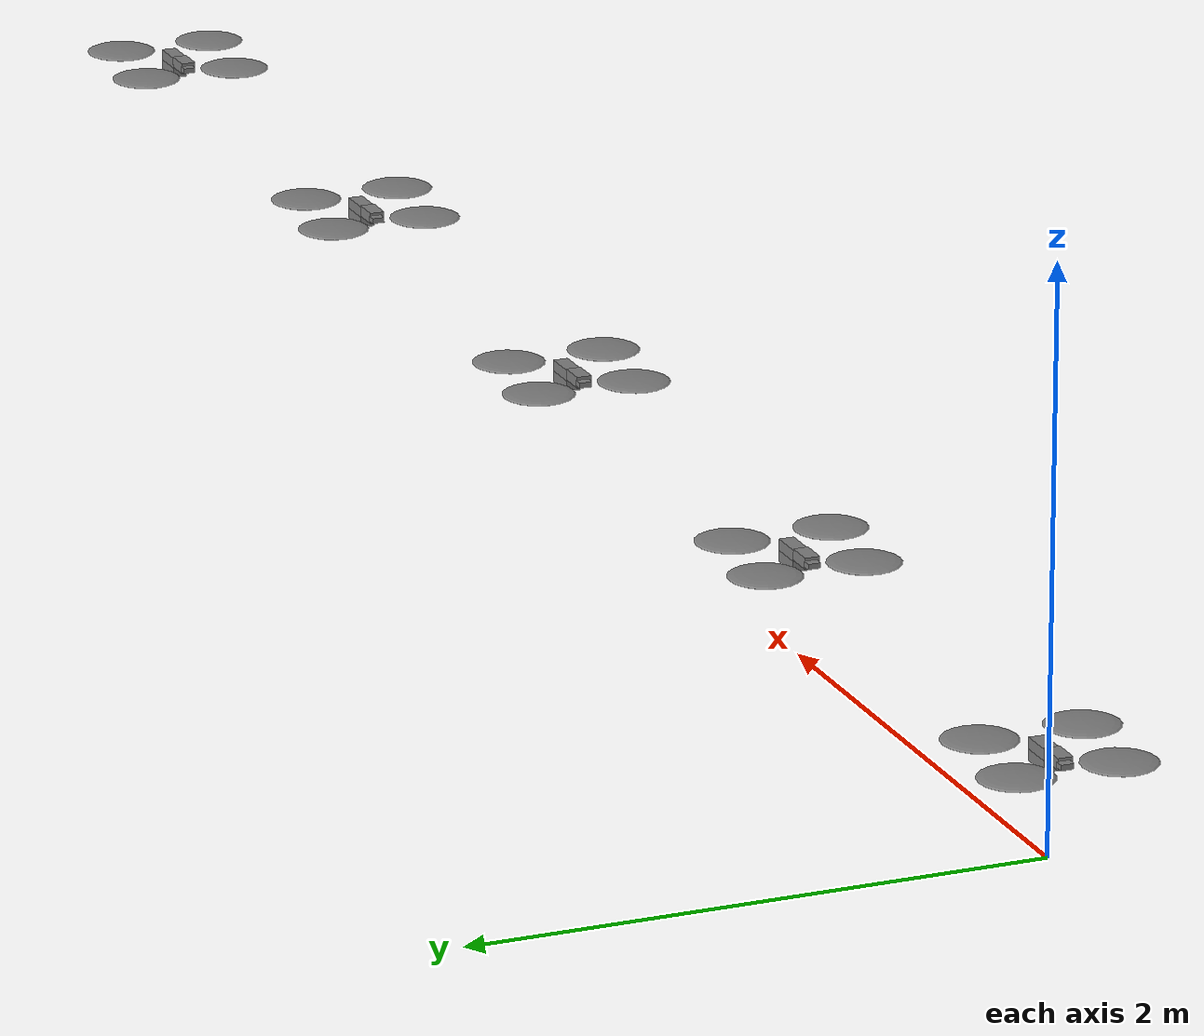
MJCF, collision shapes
<mujoco model="MultiDroneX2">
  <compiler autolimits="true" assetdir="assets"/>
  <option timestep="0.01" density="1.225" viscosity="1.8e-5"/>

  <default>
    <default class="x2">
        <geom mass="0"/>
        <motor ctrlrange="0 13"/>
        <mesh scale="0.01 0.01 0.01"/>
        <default class="visual">
          <geom group="2" type="mesh" contype="0" conaffinity="0"/>
        </default>
        <default class="collision">
          <geom group="3" type="box"/>
          <default class="rotor">
            <geom type="ellipsoid" size=".13 .13 .01"/>
          </default>
        </default>
        <site group="5"/>
    </default>
  </default>

  <asset>
    <texture type="2d" file="X2_lowpoly_texture_SpinningProps_1024.png"/>
    <material name="phong3SG" texture="X2_lowpoly_texture_SpinningProps_1024"/>
    <material name="invisible" rgba="0 0 0 0"/>
    <mesh class="x2" file="X2_lowpoly.obj"/>
  </asset>

  <worldbody>

    <body name="x2_0" pos="0.0 0.0 0.3" childclass="x2">
      <freejoint/>
      <site name="imu_0" pos="0 0 .02"/>
      <geom material="phong3SG" mesh="X2_lowpoly" class="visual" quat="0 0 1 1"/>
      <geom class="collision" size=".06 .027 .02" pos=".04 0 .02"/>
      <geom class="collision" size=".06 .027 .02" pos=".04 0 .06"/>
      <geom class="collision" size=".05 .027 .02" pos="-.07 0 .065"/>
      <geom class="collision" size=".023 .017 .01" pos="-.137 .008 .065" quat="1 0 0 1"/>
      <geom name="rotor1_0" class="rotor" pos="-.14 -.18 .05" mass=".25"/>
      <geom name="rotor2_0" class="rotor" pos="-.14 .18 .05" mass=".25"/>
      <geom name="rotor3_0" class="rotor" pos=".14 .18 .08" mass=".25"/>
      <geom name="rotor4_0" class="rotor" pos=".14 -.18 .08" mass=".25"/>
      <geom size=".16 .04 .02" pos="0 0 0.02" type="ellipsoid" mass=".325" class="visual" material="invisible"/>
      <site name="thrust1_0" pos="-.14 -.18 .05"/>
      <site name="thrust2_0" pos="-.14 .18 .05"/>
      <site name="thrust3_0" pos=".14 .18 .08"/>
      <site name="thrust4_0" pos=".14 -.18 .08"/>
    </body>

    <body name="x2_1" pos="2.0 0.0 0.3" childclass="x2">
      <freejoint/>
      <site name="imu_1" pos="0 0 .02"/>
      <geom material="phong3SG" mesh="X2_lowpoly" class="visual" quat="0 0 1 1"/>
      <geom class="collision" size=".06 .027 .02" pos=".04 0 .02"/>
      <geom class="collision" size=".06 .027 .02" pos=".04 0 .06"/>
      <geom class="collision" size=".05 .027 .02" pos="-.07 0 .065"/>
      <geom class="collision" size=".023 .017 .01" pos="-.137 .008 .065" quat="1 0 0 1"/>
      <geom name="rotor1_1" class="rotor" pos="-.14 -.18 .05" mass=".25"/>
      <geom name="rotor2_1" class="rotor" pos="-.14 .18 .05" mass=".25"/>
      <geom name="rotor3_1" class="rotor" pos=".14 .18 .08" mass=".25"/>
      <geom name="rotor4_1" class="rotor" pos=".14 -.18 .08" mass=".25"/>
      <geom size=".16 .04 .02" pos="0 0 0.02" type="ellipsoid" mass=".325" class="visual" material="invisible"/>
      <site name="thrust1_1" pos="-.14 -.18 .05"/>
      <site name="thrust2_1" pos="-.14 .18 .05"/>
      <site name="thrust3_1" pos=".14 .18 .08"/>
      <site name="thrust4_1" pos=".14 -.18 .08"/>
    </body>

    <body name="x2_2" pos="4.0 0.0 0.3" childclass="x2">
      <freejoint/>
      <site name="imu_2" pos="0 0 .02"/>
      <geom material="phong3SG" mesh="X2_lowpoly" class="visual" quat="0 0 1 1"/>
      <geom class="collision" size=".06 .027 .02" pos=".04 0 .02"/>
      <geom class="collision" size=".06 .027 .02" pos=".04 0 .06"/>
      <geom class="collision" size=".05 .027 .02" pos="-.07 0 .065"/>
      <geom class="collision" size=".023 .017 .01" pos="-.137 .008 .065" quat="1 0 0 1"/>
      <geom name="rotor1_2" class="rotor" pos="-.14 -.18 .05" mass=".25"/>
      <geom name="rotor2_2" class="rotor" pos="-.14 .18 .05" mass=".25"/>
      <geom name="rotor3_2" class="rotor" pos=".14 .18 .08" mass=".25"/>
      <geom name="rotor4_2" class="rotor" pos=".14 -.18 .08" mass=".25"/>
      <geom size=".16 .04 .02" pos="0 0 0.02" type="ellipsoid" mass=".325" class="visual" material="invisible"/>
      <site name="thrust1_2" pos="-.14 -.18 .05"/>
      <site name="thrust2_2" pos="-.14 .18 .05"/>
      <site name="thrust3_2" pos=".14 .18 .08"/>
      <site name="thrust4_2" pos=".14 -.18 .08"/>
    </body>

    <body name="x2_3" pos="6.0 0.0 0.3" childclass="x2">
      <freejoint/>
      <site name="imu_3" pos="0 0 .02"/>
      <geom material="phong3SG" mesh="X2_lowpoly" class="visual" quat="0 0 1 1"/>
      <geom class="collision" size=".06 .027 .02" pos=".04 0 .02"/>
      <geom class="collision" size=".06 .027 .02" pos=".04 0 .06"/>
      <geom class="collision" size=".05 .027 .02" pos="-.07 0 .065"/>
      <geom class="collision" size=".023 .017 .01" pos="-.137 .008 .065" quat="1 0 0 1"/>
      <geom name="rotor1_3" class="rotor" pos="-.14 -.18 .05" mass=".25"/>
      <geom name="rotor2_3" class="rotor" pos="-.14 .18 .05" mass=".25"/>
      <geom name="rotor3_3" class="rotor" pos=".14 .18 .08" mass=".25"/>
      <geom name="rotor4_3" class="rotor" pos=".14 -.18 .08" mass=".25"/>
      <geom size=".16 .04 .02" pos="0 0 0.02" type="ellipsoid" mass=".325" class="visual" material="invisible"/>
      <site name="thrust1_3" pos="-.14 -.18 .05"/>
      <site name="thrust2_3" pos="-.14 .18 .05"/>
      <site name="thrust3_3" pos=".14 .18 .08"/>
      <site name="thrust4_3" pos=".14 -.18 .08"/>
    </body>

    <body name="x2_4" pos="8.0 0.0 0.3" childclass="x2">
      <freejoint/>
      <site name="imu_4" pos="0 0 .02"/>
      <geom material="phong3SG" mesh="X2_lowpoly" class="visual" quat="0 0 1 1"/>
      <geom class="collision" size=".06 .027 .02" pos=".04 0 .02"/>
      <geom class="collision" size=".06 .027 .02" pos=".04 0 .06"/>
      <geom class="collision" size=".05 .027 .02" pos="-.07 0 .065"/>
      <geom class="collision" size=".023 .017 .01" pos="-.137 .008 .065" quat="1 0 0 1"/>
      <geom name="rotor1_4" class="rotor" pos="-.14 -.18 .05" mass=".25"/>
      <geom name="rotor2_4" class="rotor" pos="-.14 .18 .05" mass=".25"/>
      <geom name="rotor3_4" class="rotor" pos=".14 .18 .08" mass=".25"/>
      <geom name="rotor4_4" class="rotor" pos=".14 -.18 .08" mass=".25"/>
      <geom size=".16 .04 .02" pos="0 0 0.02" type="ellipsoid" mass=".325" class="visual" material="invisible"/>
      <site name="thrust1_4" pos="-.14 -.18 .05"/>
      <site name="thrust2_4" pos="-.14 .18 .05"/>
      <site name="thrust3_4" pos=".14 .18 .08"/>
      <site name="thrust4_4" pos=".14 -.18 .08"/>
    </body>

  </worldbody>

  <actuator>

    <motor class="x2" name="thrust1_0" site="thrust1_0" gear="0 0 1 0 0 -.0201"/>
    <motor class="x2" name="thrust2_0" site="thrust2_0" gear="0 0 1 0 0  .0201"/>
    <motor class="x2" name="thrust3_0" site="thrust3_0" gear="0 0 1 0 0 -.0201"/>
    <motor class="x2" name="thrust4_0" site="thrust4_0" gear="0 0 1 0 0  .0201"/>

    <motor class="x2" name="thrust1_1" site="thrust1_1" gear="0 0 1 0 0 -.0201"/>
    <motor class="x2" name="thrust2_1" site="thrust2_1" gear="0 0 1 0 0  .0201"/>
    <motor class="x2" name="thrust3_1" site="thrust3_1" gear="0 0 1 0 0 -.0201"/>
    <motor class="x2" name="thrust4_1" site="thrust4_1" gear="0 0 1 0 0  .0201"/>

    <motor class="x2" name="thrust1_2" site="thrust1_2" gear="0 0 1 0 0 -.0201"/>
    <motor class="x2" name="thrust2_2" site="thrust2_2" gear="0 0 1 0 0  .0201"/>
    <motor class="x2" name="thrust3_2" site="thrust3_2" gear="0 0 1 0 0 -.0201"/>
    <motor class="x2" name="thrust4_2" site="thrust4_2" gear="0 0 1 0 0  .0201"/>

    <motor class="x2" name="thrust1_3" site="thrust1_3" gear="0 0 1 0 0 -.0201"/>
    <motor class="x2" name="thrust2_3" site="thrust2_3" gear="0 0 1 0 0  .0201"/>
    <motor class="x2" name="thrust3_3" site="thrust3_3" gear="0 0 1 0 0 -.0201"/>
    <motor class="x2" name="thrust4_3" site="thrust4_3" gear="0 0 1 0 0  .0201"/>

    <motor class="x2" name="thrust1_4" site="thrust1_4" gear="0 0 1 0 0 -.0201"/>
    <motor class="x2" name="thrust2_4" site="thrust2_4" gear="0 0 1 0 0  .0201"/>
    <motor class="x2" name="thrust3_4" site="thrust3_4" gear="0 0 1 0 0 -.0201"/>
    <motor class="x2" name="thrust4_4" site="thrust4_4" gear="0 0 1 0 0  .0201"/>

  </actuator>

  <sensor>

    <gyro name="gyro_0" site="imu_0"/>
    <accelerometer name="acc_0" site="imu_0"/>
    <framepos name="pos_0" objtype="site" objname="imu_0"/>
    <framequat name="quat_0" objtype="site" objname="imu_0"/>
    <framelinvel name="vel_0" objtype="site" objname="imu_0"/>

    <gyro name="gyro_1" site="imu_1"/>
    <accelerometer name="acc_1" site="imu_1"/>
    <framepos name="pos_1" objtype="site" objname="imu_1"/>
    <framequat name="quat_1" objtype="site" objname="imu_1"/>
    <framelinvel name="vel_1" objtype="site" objname="imu_1"/>

    <gyro name="gyro_2" site="imu_2"/>
    <accelerometer name="acc_2" site="imu_2"/>
    <framepos name="pos_2" objtype="site" objname="imu_2"/>
    <framequat name="quat_2" objtype="site" objname="imu_2"/>
    <framelinvel name="vel_2" objtype="site" objname="imu_2"/>

    <gyro name="gyro_3" site="imu_3"/>
    <accelerometer name="acc_3" site="imu_3"/>
    <framepos name="pos_3" objtype="site" objname="imu_3"/>
    <framequat name="quat_3" objtype="site" objname="imu_3"/>
    <framelinvel name="vel_3" objtype="site" objname="imu_3"/>

    <gyro name="gyro_4" site="imu_4"/>
    <accelerometer name="acc_4" site="imu_4"/>
    <framepos name="pos_4" objtype="site" objname="imu_4"/>
    <framequat name="quat_4" objtype="site" objname="imu_4"/>
    <framelinvel name="vel_4" objtype="site" objname="imu_4"/>

  </sensor>
</mujoco>
